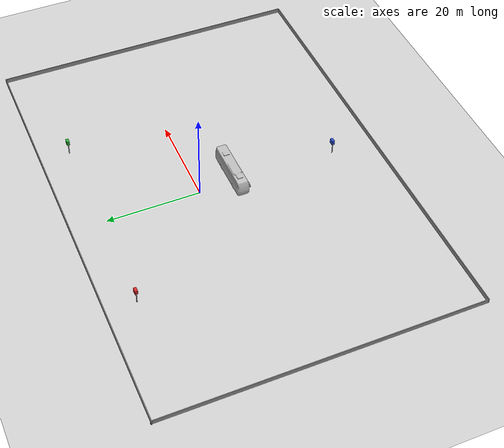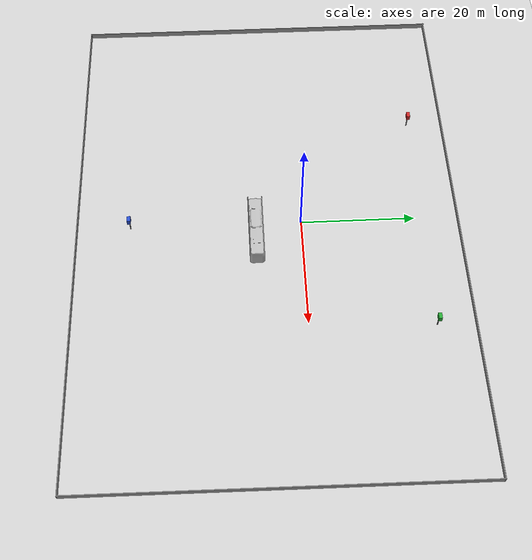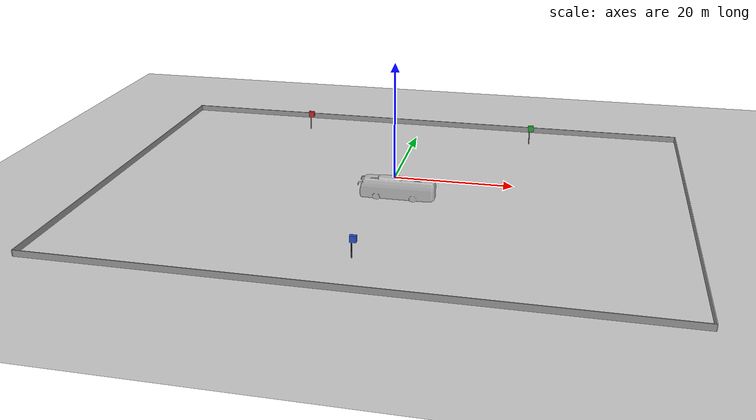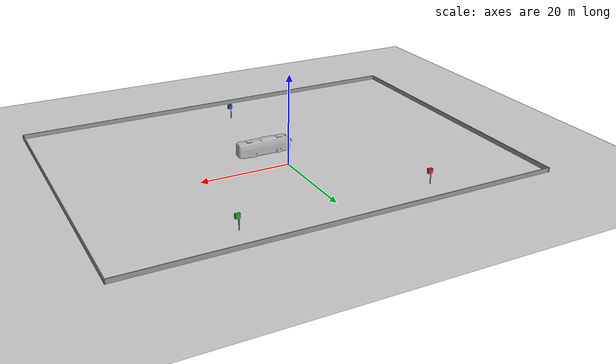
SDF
<sdf version="1.4">
 <world name="default">
  <include><uri>model://ground_plane</uri></include>
  <include><uri>model://sun</uri></include>
  <include><uri>model://red_flag</uri><name>flag_1</name><pose>-21.21320344 21.21320344 0 0 0 0</pose></include>
  <include>
   <uri>model://green_flag</uri>
   <name>flag_2</name>
   <pose>21.21320344 21.21320344 0 0 0 0</pose>
  </include>
  <include><uri>model://blue_flag</uri><name>flag_3</name><pose>0 -30 0 0 0 0</pose></include>
  <plugin name="dtfPlugin" filename="libdistance_to_flag_plugin.so"><nbFlags>3</nbFlags></plugin>
  <include><uri>model://walls_evry</uri><name>limits</name></include>
  <include><uri>model://my_models/bus</uri><name>bus</name><pose>2 -8 -0.3 0 0 0</pose></include>
 </world>
</sdf>

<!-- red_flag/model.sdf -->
<sdf version="1.4">
  <model name="flag">
    <static>true</static>
    <link name="flag">
      <visual name="base">
        <pose>0 0 1.5 0 0 0</pose>
        <geometry>
          <cylinder>
            <radius>0.1</radius>
            <length>3</length>
          </cylinder>
        </geometry>

        <!-- BLACK -->
        <material>
          <ambient>0 0 0 1</ambient>
        </material>
      </visual>

      <visual name="top">
        <pose>0.25 0 3 0 0 0</pose>
        <geometry>
          <box>
            <size>1 0.6 1</size>
          </box>
        </geometry>

        <!-- RED -->
        <material>
          <script>
            <uri>file://media/materials/scripts/gazebo.material</uri>
            <name>Gazebo/Red</name>
          </script>
        </material>

      </visual>
    </link>
  </model>
</sdf>

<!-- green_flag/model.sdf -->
<sdf version="1.4">
  <model name="flag">
    <static>true</static>
    <link name="flag">
      <visual name="base">
        <pose>0 0 1.5 0 0 0</pose>
        <geometry>
          <cylinder>
            <radius>0.1</radius>
            <length>3</length>
          </cylinder>
        </geometry>

        <!-- BLACK -->
        <material>
          <ambient>0 0 0 1</ambient>
        </material>
      </visual>

      <visual name="top">
        <pose>0.25 0 3 0 0 0</pose>
        <geometry>
          <box>
            <size>1 0.6 1</size>
          </box>
        </geometry>

        <!-- GREEN -->
        <material>
          <script>
            <uri>file://media/materials/scripts/gazebo.material</uri>
            <name>Gazebo/Green</name>
          </script>
        </material>

      </visual>
    </link>
  </model>
</sdf>

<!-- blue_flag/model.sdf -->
<sdf version="1.4">
  <model name="flag">
    <static>true</static>
    <link name="flag">
      <visual name="base">
        <pose>0 0 1.5 0 0 0</pose>
        <geometry>
          <cylinder>
            <radius>0.1</radius>
            <length>3</length>
          </cylinder>
        </geometry>

        <!-- BLACK -->
        <material>
          <ambient>0 0 0 1</ambient>
        </material>
      </visual>

      <visual name="top">
        <pose>0.25 0 3 0 0 0</pose>
        <geometry>
          <box>
            <size>1 0.6 1</size>
          </box>
        </geometry>

        <!-- BLUE -->
        <material>
          <script>
            <uri>file://media/materials/scripts/gazebo.material</uri>
            <name>Gazebo/Blue</name>
          </script>
        </material>

      </visual>
    </link>
  </model>
</sdf>

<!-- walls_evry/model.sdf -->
<sdf version='1.6'>
  <model name='walls_evry'>
    <pose frame=''>0.580204 -5.79028 0 0 -0 0</pose>
    <link name='Wall_0'>
      <collision name='Wall_0_Collision'>
        <geometry>
          <box>
            <size>95 0.15 1</size>
          </box>
        </geometry>
        <pose frame=''>0 0 0.5 0 -0 0</pose>
      </collision>
      <visual name='Wall_0_Visual'>
        <pose frame=''>0 0 0.5 0 -0 0</pose>
        <geometry>
          <box>
            <size>95 0.15 1</size>
          </box>
        </geometry>
        <material>
          <script>
            <uri>file://media/materials/scripts/gazebo.material</uri>
            <name>Gazebo/Grey</name>
          </script>
          <ambient>1 1 1 1</ambient>
        </material>
        <meta>
          <layer>0</layer>
        </meta>
      </visual>
      <pose frame=''>-0.000204 33.4423 0 0 -0 0</pose>
    </link>
    <link name='Wall_1'>
      <collision name='Wall_1_Collision'>
        <geometry>
          <box>
            <size>67.1433 0.15 1</size>
          </box>
        </geometry>
        <pose frame=''>0 0 0.5 0 -0 0</pose>
      </collision>
      <visual name='Wall_1_Visual'>
        <pose frame=''>0 0 0.5 0 -0 0</pose>
        <geometry>
          <box>
            <size>67.1433 0.15 1</size>
          </box>
        </geometry>
        <material>
          <script>
            <uri>file://media/materials/scripts/gazebo.material</uri>
            <name>Gazebo/Grey</name>
          </script>
          <ambient>1 1 1 1</ambient>
        </material>
        <meta>
          <layer>0</layer>
        </meta>
      </visual>
      <pose frame=''>47.2433 -0.053719 0 0 -0 -1.57621</pose>
    </link>
    <link name='Wall_2'>
      <collision name='Wall_2_Collision'>
        <geometry>
          <box>
            <size>94.5 0.15 1</size>
          </box>
        </geometry>
        <pose frame=''>0 0 0.5 0 -0 0</pose>
      </collision>
      <visual name='Wall_2_Visual'>
        <pose frame=''>0 0 0.5 0 -0 0</pose>
        <geometry>
          <box>
            <size>94.5 0.15 1</size>
          </box>
        </geometry>
        <material>
          <script>
            <uri>file://media/materials/scripts/gazebo.material</uri>
            <name>Gazebo/Grey</name>
          </script>
          <ambient>1 1 1 1</ambient>
        </material>
        <meta>
          <layer>0</layer>
        </meta>
      </visual>
      <pose frame=''>-0.113204 -33.5497 0 0 -0 3.14159</pose>
    </link>
    <link name='Wall_3'>
      <collision name='Wall_3_Collision'>
        <geometry>
          <box>
            <size>67.25 0.15 1</size>
          </box>
        </geometry>
        <pose frame=''>0 0 0.5 0 -0 0</pose>
      </collision>
      <visual name='Wall_3_Visual'>
        <pose frame=''>0 0 0.5 0 -0 0</pose>
        <geometry>
          <box>
            <size>67.25 0.15 1</size>
          </box>
        </geometry>
        <material>
          <script>
            <uri>file://media/materials/scripts/gazebo.material</uri>
            <name>Gazebo/Grey</name>
          </script>
          <ambient>1 1 1 1</ambient>
        </material>
        <meta>
          <layer>0</layer>
        </meta>
      </visual>
      <pose frame=''>-47.2882 0.000281 0 0 -0 1.5708</pose>
    </link>
    <static>1</static>
  </model>
</sdf>

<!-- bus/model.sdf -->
<sdf version='1.7'>
  <model name='bus'>
    <model name='bus'>
      <static>1</static>
      <link name='link'>
        <collision name='collision'>
          <geometry>
            <mesh>
              <scale>0.01 0.01 0.01</scale>
              <uri>model://bus/meshes/bus.obj</uri>
            </mesh>
          </geometry>
        </collision>
        <visual name='visual'>
          <geometry>
            <mesh>
              <scale>0.01 0.01 0.01</scale>
              <uri>model://bus/meshes/bus.obj</uri>
            </mesh>
          </geometry>
        </visual>
      </link>
      <pose>5e-06 2e-06 -0 0 0 -1.56638</pose>
    </model>
    <static>0</static>
    <allow_auto_disable>1</allow_auto_disable>
  </model>
</sdf>
